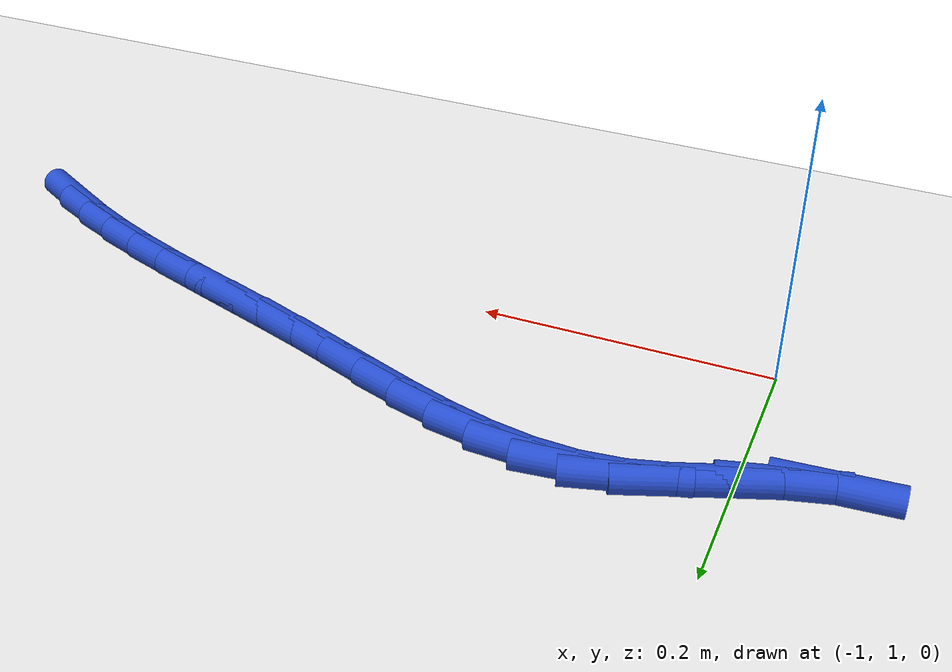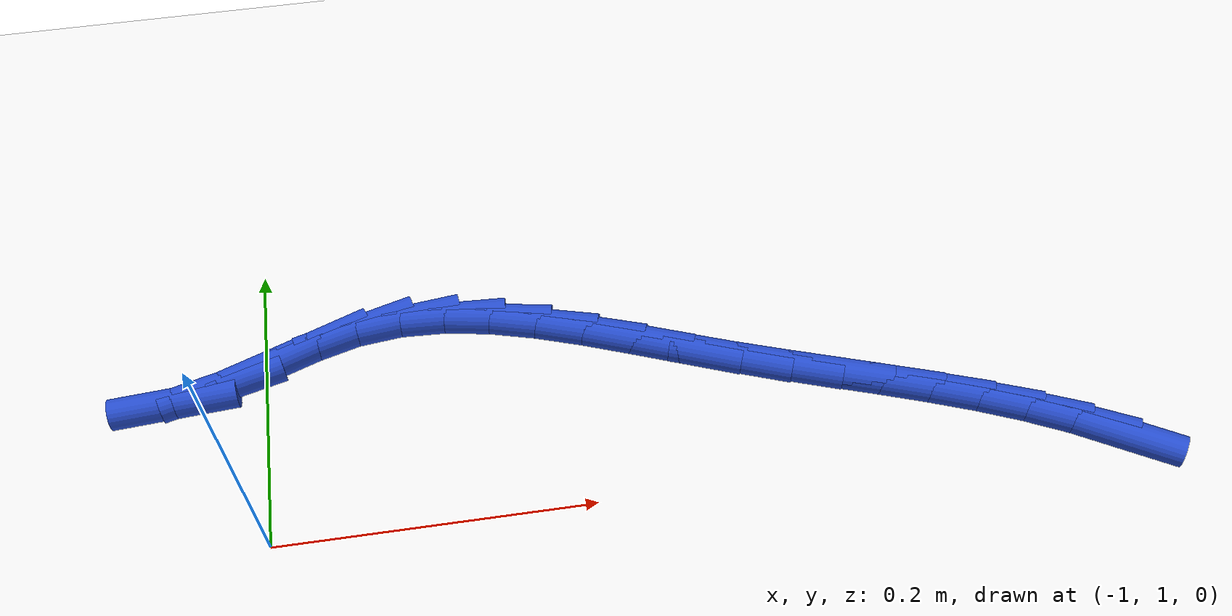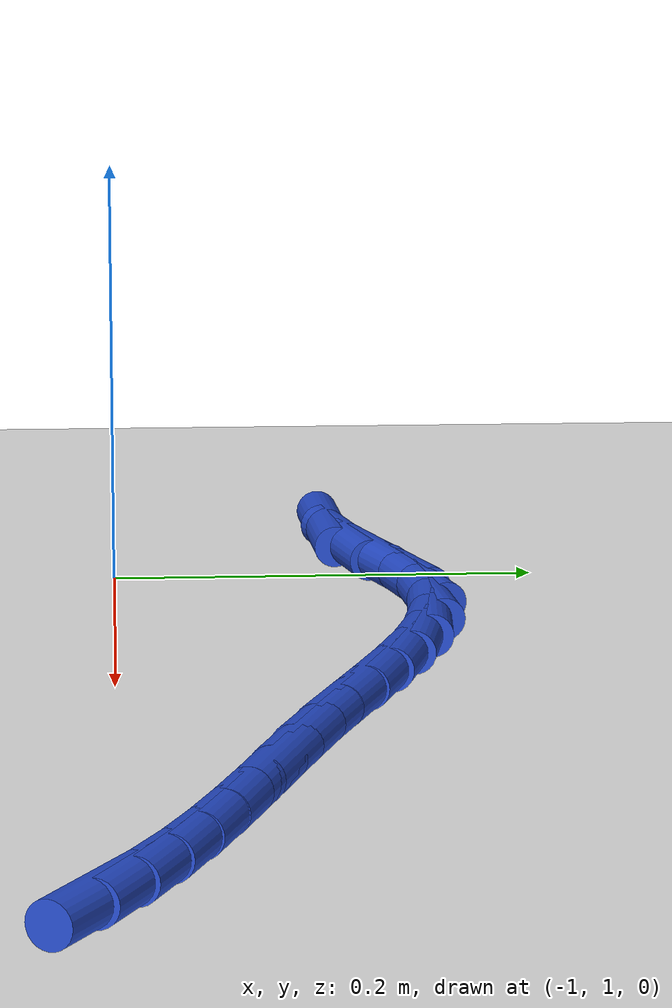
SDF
<sdf version="1.6">
 <world name="default">
  <model name="ground_plane">
   <static>1</static>
   <link name="link">
    <collision name="collision">
     <geometry><plane><normal>0 0 1</normal><size>100 100</size></plane></geometry>
     <surface><friction><ode><mu>100</mu><mu2>50</mu2></ode></friction></surface>
    </collision>
    <visual name="visual">
     <cast_shadows>0</cast_shadows>
     <geometry><plane><normal>0 0 1</normal><size>100 100</size></plane></geometry>
     <material>
      <script><uri>file://media/materials/scripts/gazebo.material</uri><name>Gazebo/WhiteGlow</name></script>
     </material>
    </visual>
   </link>
  </model>
  <model name="line">
   <link name="link_37">
    <pose>-0.47179537082136486 0.9952839949393533 0.01 0 1.57 -0.5123888260326118</pose>
    <collision name="collision">
     <geometry><cylinder><radius>0.01</radius><length>0.08</length></cylinder></geometry>
    </collision>
    <visual name="visual">
     <material>
      <script><name>Gazebo/Blue</name><uri>file://media/materials/scripts/gazebo.material</uri></script>
     </material>
     <geometry><cylinder><radius>0.01</radius><length>0.08</length></cylinder></geometry>
    </visual>
   </link>
   <link name="link_38">
    <pose>-0.49732646397833413 1.0096452135225182 0.01 0 1.57 -0.4474960084580683</pose>
    <collision name="collision">
     <geometry><cylinder><radius>0.01</radius><length>0.08</length></cylinder></geometry>
    </collision>
    <visual name="visual">
     <material>
      <script><name>Gazebo/Blue</name><uri>file://media/materials/scripts/gazebo.material</uri></script>
     </material>
     <geometry><cylinder><radius>0.01</radius><length>0.08</length></cylinder></geometry>
    </visual>
   </link>
   <link name="link_39">
    <pose>-0.5241883837573194 1.022538142904422 0.01 0 1.57 -0.39697819226219205</pose>
    <collision name="collision">
     <geometry><cylinder><radius>0.01</radius><length>0.08</length></cylinder></geometry>
    </collision>
    <visual name="visual">
     <material>
      <script><name>Gazebo/Blue</name><uri>file://media/materials/scripts/gazebo.material</uri></script>
     </material>
     <geometry><cylinder><radius>0.01</radius><length>0.08</length></cylinder></geometry>
    </visual>
   </link>
   <link name="link_40">
    <pose>-0.5521792640372009 1.0342729215604665 0.01 0 1.57 -0.360059313446639</pose>
    <collision name="collision">
     <geometry><cylinder><radius>0.01</radius><length>0.08</length></cylinder></geometry>
    </collision>
    <visual name="visual">
     <material>
      <script><name>Gazebo/Blue</name><uri>file://media/materials/scripts/gazebo.material</uri></script>
     </material>
     <geometry><cylinder><radius>0.01</radius><length>0.08</length></cylinder></geometry>
    </visual>
   </link>
   <link name="link_41">
    <pose>-0.5810972386968598 1.0451596879660532 0.01 0 1.57 -0.3358863589384313</pose>
    <collision name="collision">
     <geometry><cylinder><radius>0.01</radius><length>0.08</length></cylinder></geometry>
    </collision>
    <visual name="visual">
     <material>
      <script><name>Gazebo/Blue</name><uri>file://media/materials/scripts/gazebo.material</uri></script>
     </material>
     <geometry><cylinder><radius>0.01</radius><length>0.08</length></cylinder></geometry>
    </visual>
   </link>
   <link name="link_42">
    <pose>-0.6107404416151766 1.055508580596584 0.01 0 1.57 -0.3237074716809988</pose>
    <collision name="collision">
     <geometry><cylinder><radius>0.01</radius><length>0.08</length></cylinder></geometry>
    </collision>
    <visual name="visual">
     <material>
      <script><name>Gazebo/Blue</name><uri>file://media/materials/scripts/gazebo.material</uri></script>
     </material>
     <geometry><cylinder><radius>0.01</radius><length>0.08</length></cylinder></geometry>
    </visual>
   </link>
   <link name="link_43">
    <pose>-0.6409070066710321 1.0656297379274606 0.01 0 1.57 -0.32295664379776373</pose>
    <collision name="collision">
     <geometry><cylinder><radius>0.01</radius><length>0.08</length></cylinder></geometry>
    </collision>
    <visual name="visual">
     <material>
      <script><name>Gazebo/Blue</name><uri>file://media/materials/scripts/gazebo.material</uri></script>
     </material>
     <geometry><cylinder><radius>0.01</radius><length>0.08</length></cylinder></geometry>
    </visual>
   </link>
   <link name="link_44">
    <pose>-0.6713950677433072 1.0758332984340848 0.01 0 1.57 -0.3332773336003079</pose>
    <collision name="collision">
     <geometry><cylinder><radius>0.01</radius><length>0.08</length></cylinder></geometry>
    </collision>
    <visual name="visual">
     <material>
      <script><name>Gazebo/Blue</name><uri>file://media/materials/scripts/gazebo.material</uri></script>
     </material>
     <geometry><cylinder><radius>0.01</radius><length>0.08</length></cylinder></geometry>
    </visual>
   </link>
   <link name="link_45">
    <pose>-0.7020027587108822 1.0864294005918582 0.01 0 1.57 -0.3536466021407067</pose>
    <collision name="collision">
     <geometry><cylinder><radius>0.01</radius><length>0.08</length></cylinder></geometry>
    </collision>
    <visual name="visual">
     <material>
      <script><name>Gazebo/Blue</name><uri>file://media/materials/scripts/gazebo.material</uri></script>
     </material>
     <geometry><cylinder><radius>0.01</radius><length>0.08</length></cylinder></geometry>
    </visual>
   </link>
   <link name="link_46">
    <pose>-0.7325328604942872 1.0977000919589615 0.01 0 1.57 -0.36688571351195015</pose>
    <collision name="collision">
     <geometry><cylinder><radius>0.01</radius><length>0.08</length></cylinder></geometry>
    </collision>
    <visual name="visual">
     <material>
      <script><name>Gazebo/Blue</name><uri>file://media/materials/scripts/gazebo.material</uri></script>
     </material>
     <geometry><cylinder><radius>0.01</radius><length>0.08</length></cylinder></geometry>
    </visual>
   </link>
   <link name="link_47">
    <pose>-0.7628815845318117 1.1093626416519942 0.01 0 1.57 -0.3570950004985565</pose>
    <collision name="collision">
     <geometry><cylinder><radius>0.01</radius><length>0.08</length></cylinder></geometry>
    </collision>
    <visual name="visual">
     <material>
      <script><name>Gazebo/Blue</name><uri>file://media/materials/scripts/gazebo.material</uri></script>
     </material>
     <geometry><cylinder><radius>0.01</radius><length>0.08</length></cylinder></geometry>
    </visual>
   </link>
   <link name="link_48">
    <pose>-0.7930316596117738 1.1206113297761435 0.01 0 1.57 -0.3226596815610496</pose>
    <collision name="collision">
     <geometry><cylinder><radius>0.01</radius><length>0.08</length></cylinder></geometry>
    </collision>
    <visual name="visual">
     <material>
      <script><name>Gazebo/Blue</name><uri>file://media/materials/scripts/gazebo.material</uri></script>
     </material>
     <geometry><cylinder><radius>0.01</radius><length>0.08</length></cylinder></geometry>
    </visual>
   </link>
   <link name="link_49">
    <pose>-0.8229690763687596 1.13062071889146 0.01 0 1.57 -0.261286862628537</pose>
    <collision name="collision">
     <geometry><cylinder><radius>0.01</radius><length>0.08</length></cylinder></geometry>
    </collision>
    <visual name="visual">
     <material>
      <script><name>Gazebo/Blue</name><uri>file://media/materials/scripts/gazebo.material</uri></script>
     </material>
     <geometry><cylinder><radius>0.01</radius><length>0.08</length></cylinder></geometry>
    </visual>
   </link>
   <link name="link_50">
    <pose>-0.8526798254373542 1.1385653715579933 0.01 0 1.57 -0.1698595762940577</pose>
    <collision name="collision">
     <geometry><cylinder><radius>0.01</radius><length>0.08</length></cylinder></geometry>
    </collision>
    <visual name="visual">
     <material>
      <script><name>Gazebo/Blue</name><uri>file://media/materials/scripts/gazebo.material</uri></script>
     </material>
     <geometry><cylinder><radius>0.01</radius><length>0.08</length></cylinder></geometry>
    </visual>
   </link>
   <link name="link_51">
    <pose>-0.8821498974521432 1.143619850335793 0.01 0 1.57 -0.045795437010591265</pose>
    <collision name="collision">
     <geometry><cylinder><radius>0.01</radius><length>0.08</length></cylinder></geometry>
    </collision>
    <visual name="visual">
     <material>
      <script><name>Gazebo/Blue</name><uri>file://media/materials/scripts/gazebo.material</uri></script>
     </material>
     <geometry><cylinder><radius>0.01</radius><length>0.08</length></cylinder></geometry>
    </visual>
   </link>
   <link name="link_52">
    <pose>-0.9113652830477125 1.1449587177849092 0.01 0 1.57 0.11017543452837951</pose>
    <collision name="collision">
     <geometry><cylinder><radius>0.01</radius><length>0.08</length></cylinder></geometry>
    </collision>
    <visual name="visual">
     <material>
      <script><name>Gazebo/Blue</name><uri>file://media/materials/scripts/gazebo.material</uri></script>
     </material>
     <geometry><cylinder><radius>0.01</radius><length>0.08</length></cylinder></geometry>
    </visual>
   </link>
   <link name="link_53">
    <pose>-0.9403119728586468 1.1417565364653912 0.01 0 1.57 0.2736359876907536</pose>
    <collision name="collision">
     <geometry><cylinder><radius>0.01</radius><length>0.08</length></cylinder></geometry>
    </collision>
    <visual name="visual">
     <material>
      <script><name>Gazebo/Blue</name><uri>file://media/materials/scripts/gazebo.material</uri></script>
     </material>
     <geometry><cylinder><radius>0.01</radius><length>0.08</length></cylinder></geometry>
    </visual>
   </link>
   <link name="link_54">
    <pose>-0.969020926816285 1.1336986053773777 0.01 0 1.57 0.3597674571014708</pose>
    <collision name="collision">
     <geometry><cylinder><radius>0.01</radius><length>0.08</length></cylinder></geometry>
    </collision>
    <visual name="visual">
     <material>
      <script><name>Gazebo/Blue</name><uri>file://media/materials/scripts/gazebo.material</uri></script>
     </material>
     <geometry><cylinder><radius>0.01</radius><length>0.08</length></cylinder></geometry>
    </visual>
   </link>
   <link name="link_55">
    <pose>-0.9977368201905479 1.1228974843211486 0.01 0 1.57 0.3534706112127885</pose>
    <collision name="collision">
     <geometry><cylinder><radius>0.01</radius><length>0.08</length></cylinder></geometry>
    </collision>
    <visual name="visual">
     <material>
      <script><name>Gazebo/Blue</name><uri>file://media/materials/scripts/gazebo.material</uri></script>
     </material>
     <geometry><cylinder><radius>0.01</radius><length>0.08</length></cylinder></geometry>
    </visual>
   </link>
   <link name="link_56">
    <pose>-1.026767749987862 1.112186042158194 0.01 0 1.57 0.2568529787826786</pose>
    <collision name="collision">
     <geometry><cylinder><radius>0.01</radius><length>0.08</length></cylinder></geometry>
    </collision>
    <visual name="visual">
     <material>
      <script><name>Gazebo/Blue</name><uri>file://media/materials/scripts/gazebo.material</uri></script>
     </material>
     <geometry><cylinder><radius>0.01</radius><length>0.08</length></cylinder></geometry>
    </visual>
   </link>
   <link name="link_57">
    <pose>-1.0564218233400802 1.1043972627489973 0.01 0 1.57 0.06773204795901323</pose>
    <collision name="collision">
     <geometry><cylinder><radius>0.01</radius><length>0.08</length></cylinder></geometry>
    </collision>
    <visual name="visual">
     <material>
      <script><name>Gazebo/Blue</name><uri>file://media/materials/scripts/gazebo.material</uri></script>
     </material>
     <geometry><cylinder><radius>0.01</radius><length>0.08</length></cylinder></geometry>
    </visual>
   </link>
  </model>
 </world>
</sdf>
